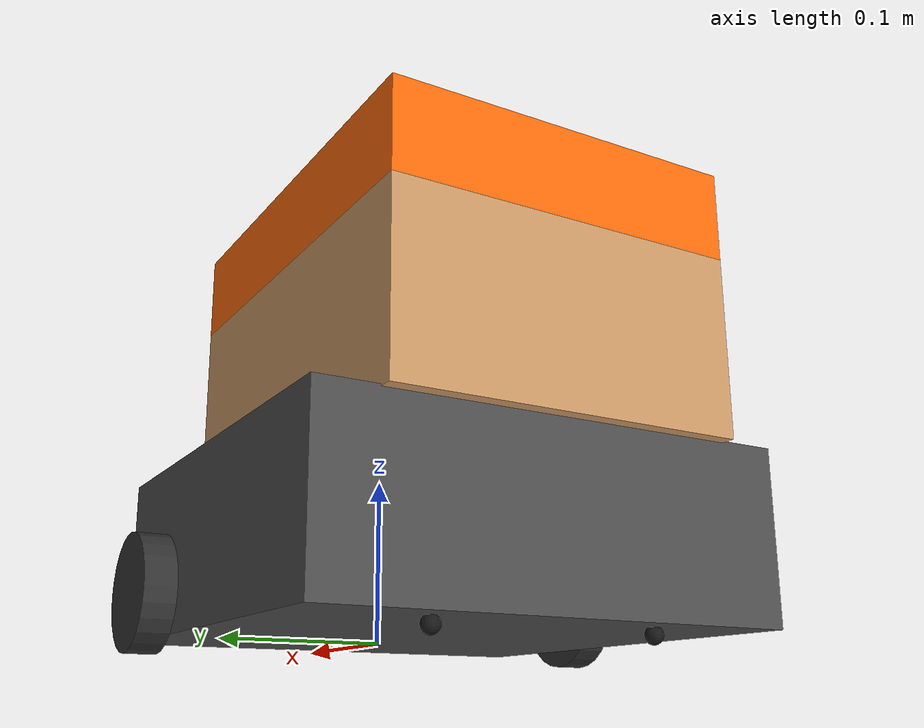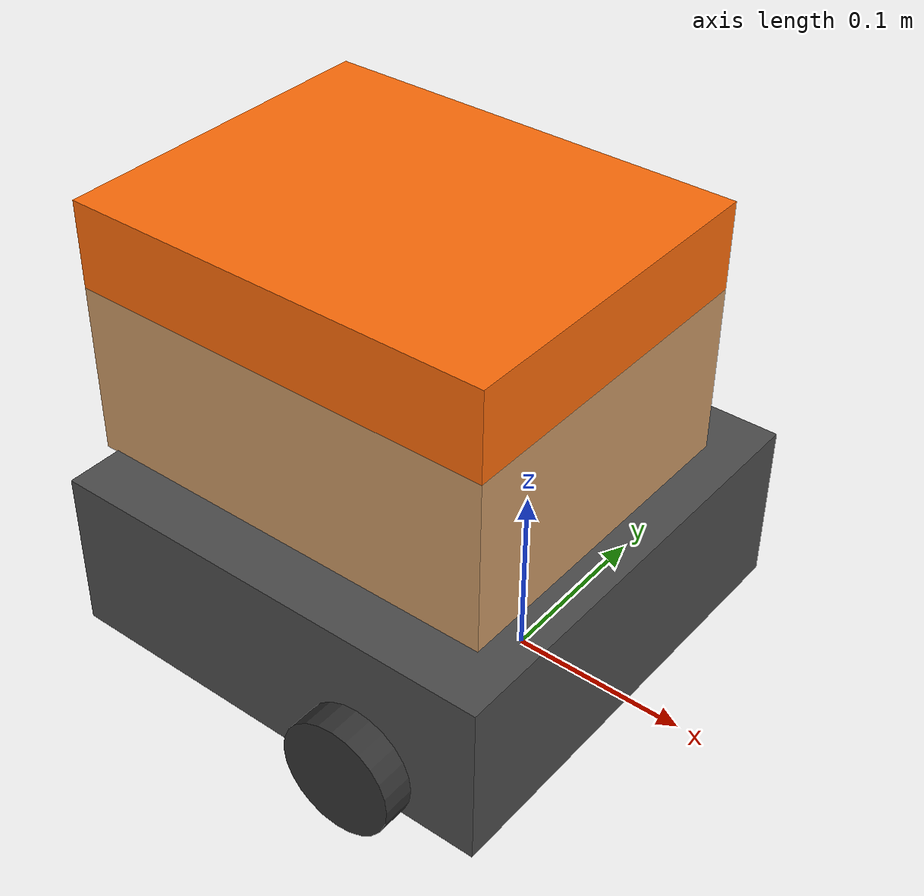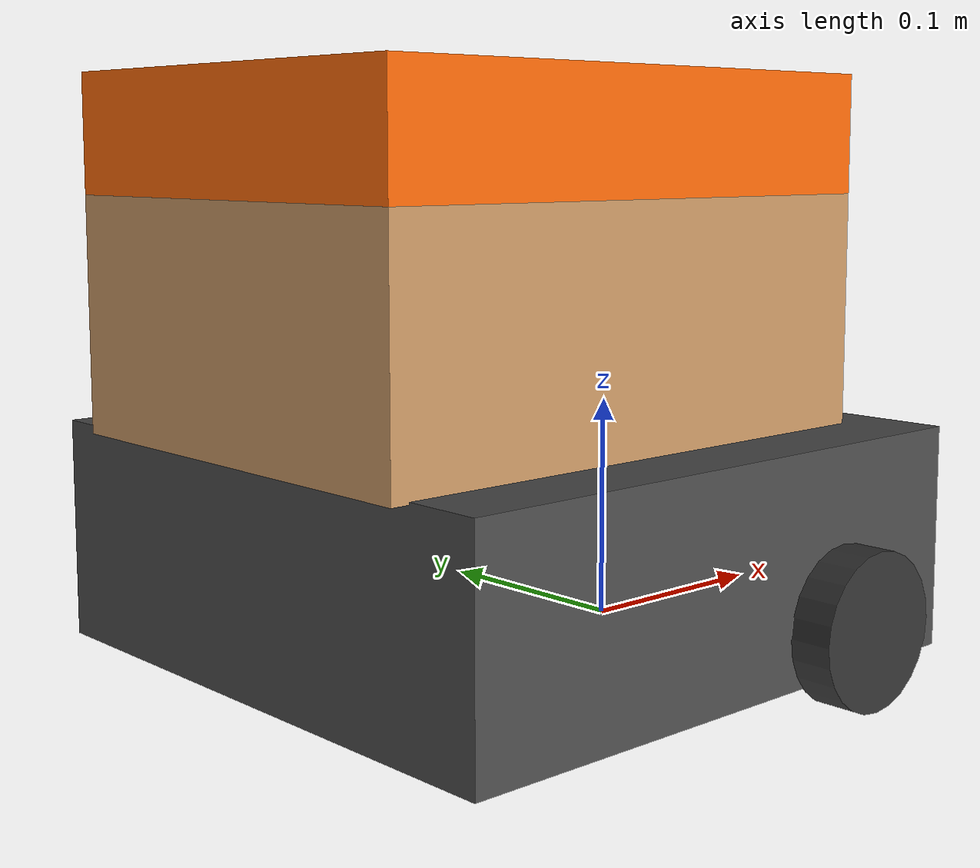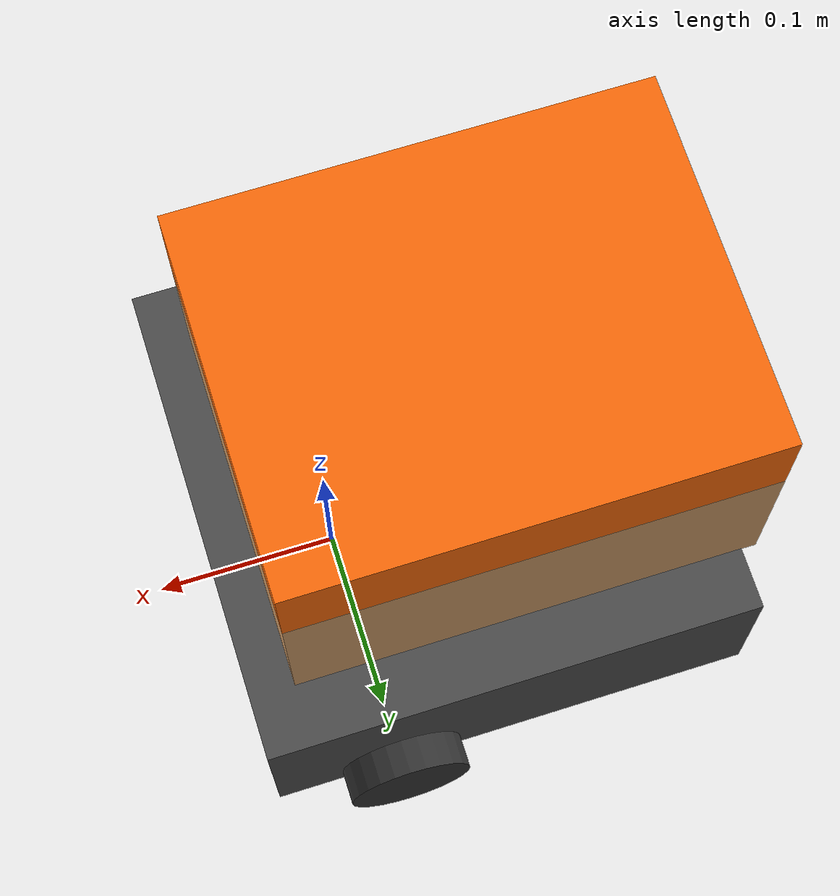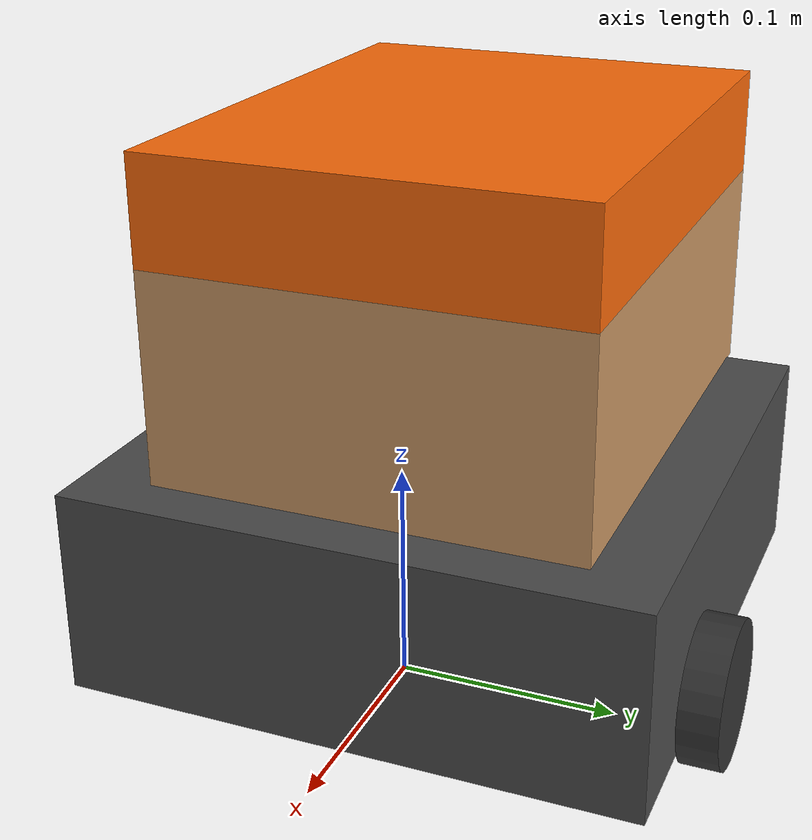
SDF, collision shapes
<?xml version="1.0" ?>
<sdf version="1.8">
  <model name="turtlebot3_waffle_pi">
    <pose>0.0 0.0 0.0 0.0 0.0 0.0</pose>

    <link name="base_footprint"/>

    <link name="base_link">
      <inertial>
        <pose>-0.064 0 0.048 0 0 0</pose>
        <inertia>
          <ixx>3.2458e-02</ixx>
          <ixy>0</ixy>
          <ixz>0</ixz>
          <iyy>3.2458e-02</iyy>
          <iyz>0</iyz>
          <izz>5.8722e-02</izz>
        </inertia>
        <mass>1.3729</mass>
      </inertial>

      <collision name="base_collision">
        <pose>-0.064 0 0.048 0 0 0</pose>
        <geometry>
          <box>
            <size>0.266 0.266 0.096</size>
          </box>
        </geometry>
      </collision>

      <visual name="base_visual">
        <pose>-0.032 0 0 0 0 0</pose>
        <geometry>
          <mesh>
            <uri>model://turtlebot3_common/meshes/bases/waffle_pi_base.stl</uri>
            <scale>0.001 0.001 0.001</scale>
          </mesh>
        </geometry>
        <material>
          <ambient>0.3 0.3 0.3 1.0</ambient>
          <diffuse>0.3 0.3 0.3 1.0</diffuse>
        </material>
      </visual>
    </link>

    <link name="imu_link">
      <sensor name="tb3_imu" type="imu">
        <always_on>true</always_on>
        <update_rate>200</update_rate>
        <topic>imu</topic>
        <imu>
          <angular_velocity>
            <x>
              <noise type="gaussian">
                <mean>0.0</mean>
                <stddev>2e-4</stddev>
              </noise>
            </x>
            <y>
              <noise type="gaussian">
                <mean>0.0</mean>
                <stddev>2e-4</stddev>
              </noise>
            </y>
            <z>
              <noise type="gaussian">
                <mean>0.0</mean>
                <stddev>2e-4</stddev>
              </noise>
            </z>
          </angular_velocity>
          <linear_acceleration>
            <x>
              <noise type="gaussian">
                <mean>0.0</mean>
                <stddev>1.7e-2</stddev>
              </noise>
            </x>
            <y>
              <noise type="gaussian">
                <mean>0.0</mean>
                <stddev>1.7e-2</stddev>
              </noise>
            </y>
            <z>
              <noise type="gaussian">
                <mean>0.0</mean>
                <stddev>1.7e-2</stddev>
              </noise>
            </z>
          </linear_acceleration>
        </imu>
      </sensor>
    </link>

    <link name="base_scan">
      <inertial>
        <pose>-0.052 0 0.111 0 0 0</pose>
        <inertia>
          <ixx>0.001</ixx>
          <ixy>0.000</ixy>
          <ixz>0.000</ixz>
          <iyy>0.001</iyy>
          <iyz>0.000</iyz>
          <izz>0.001</izz>
        </inertia>
        <mass>0.114</mass>
      </inertial>

      <collision name="lidar_sensor_collision">
        <pose>-0.052 0 0.111 0 0 0</pose>
        <geometry>
          <cylinder>
            <radius>0.0508</radius>
            <length>0.055</length>
          </cylinder>
        </geometry>
      </collision>

      <visual name="lidar_sensor_visual">
        <pose>-0.064 0 0.121 0 0 0</pose>
        <geometry>
          <mesh>
            <uri>model://turtlebot3_common/meshes/sensors/lds.stl</uri>
            <scale>0.001 0.001 0.001</scale>
          </mesh>
        </geometry>
        <material>
          <ambient>0.2 0.2 0.2 1.0</ambient>
          <diffuse>0.2 0.2 0.2 1.0</diffuse>
        </material>
      </visual>

      <sensor name="hls_lfcd_lds" type="gpu_lidar">
        <always_on>true</always_on>
        <visualize>true</visualize>
        <pose>-0.064 0 0.121 0 0 0</pose>
        <update_rate>10</update_rate>
        <topic>scan</topic>
        <gz_frame_id>base_scan</gz_frame_id>
        <lidar>
          <scan>
            <horizontal>
              <samples>360</samples>
              <resolution>1.000000</resolution>
              <min_angle>0.000000</min_angle>
              <max_angle>6.280000</max_angle>
            </horizontal>
          </scan>
          <range>
            <min>0.120000</min>
            <max>3.5</max>
            <resolution>0.015000</resolution>
          </range>
          <noise>
            <type>gaussian</type>
            <mean>0.0</mean>
            <stddev>0.01</stddev>
          </noise>
        </lidar>
      </sensor>
    </link>

    <link name="wheel_left_link">
      <inertial>
        <pose>0.0 0.144 0.023 -1.57 0 0</pose>
        <inertia>
          <ixx>1.8158194e-03</ixx>
          <ixy>-9.3392e-12</ixy>
          <ixz>1.04909e-11</ixz>
          <iyy>3.2922126e-03</iyy>
          <iyz>5.75694e-11</iyz>
          <izz>1.8158194e-03</izz>
        </inertia>
        <mass>2.8498940e-02</mass>
      </inertial>

      <collision name="wheel_left_collision">
        <pose>0.0 0.144 0.023 -1.57 0 0</pose>
        <geometry>
          <cylinder>
            <radius>0.033</radius>
            <length>0.018</length>
          </cylinder>
        </geometry>
        <surface>
          <friction>
            <ode>
              <mu>100000</mu>
              <mu2>100000</mu2>
              <fdir1>0 0 0</fdir1>
              <slip1>0.0</slip1>
              <slip2>0.0</slip2>
            </ode>
          </friction>
          <contact>
            <ode>
              <soft_cfm>0</soft_cfm>
              <soft_erp>0.2</soft_erp>
              <kp>1e+5</kp>
              <kd>1</kd>
              <max_vel>0.01</max_vel>
              <min_depth>0.001</min_depth>
            </ode>
          </contact>
        </surface>
      </collision>

      <visual name="wheel_left_visual">
        <pose>0.0 0.144 0.023 0 0 0</pose>
        <geometry>
          <mesh>
            <uri>model://turtlebot3_common/meshes/wheels/left_tire.stl</uri>
            <scale>0.001 0.001 0.001</scale>
          </mesh>
        </geometry>
        <material>
          <ambient>0.2 0.2 0.2 1.0</ambient>
          <diffuse>0.2 0.2 0.2 1.0</diffuse>
        </material>
      </visual>
    </link>

    <link name="wheel_right_link">
      <inertial>
        <pose>0.0 -0.144 0.023 -1.57 0 0</pose>
        <inertia>
          <ixx>1.8158194e-03</ixx>
          <ixy>-9.3392e-12</ixy>
          <ixz>1.04909e-11</ixz>
          <iyy>3.2922126e-03</iyy>
          <iyz>5.75694e-11</iyz>
          <izz>1.8158194e-03</izz>
        </inertia>
        <mass>2.8498940e-02</mass>
      </inertial>

      <collision name="wheel_right_collision">
        <pose>0.0 -0.144 0.023 -1.57 0 0</pose>
        <geometry>
          <cylinder>
            <radius>0.033</radius>
            <length>0.018</length>
          </cylinder>
        </geometry>
        <surface>
          <friction>
            <ode>
              <mu>100000</mu>
              <mu2>100000</mu2>
              <fdir1>0 0 0</fdir1>
              <slip1>0.0</slip1>
              <slip2>0.0</slip2>
            </ode>
          </friction>
          <contact>
            <ode>
              <soft_cfm>0</soft_cfm>
              <soft_erp>0.2</soft_erp>
              <kp>1e+5</kp>
              <kd>1</kd>
              <max_vel>0.01</max_vel>
              <min_depth>0.001</min_depth>
            </ode>
          </contact>
        </surface>
      </collision>

      <visual name="wheel_right_visual">
        <pose>0.0 -0.144 0.023 0 0 0</pose>
        <geometry>
          <mesh>
            <uri>model://turtlebot3_common/meshes/wheels/right_tire.stl</uri>
            <scale>0.001 0.001 0.001</scale>
          </mesh>
        </geometry>
        <material>
          <ambient>0.2 0.2 0.2 1.0</ambient>
          <diffuse>0.2 0.2 0.2 1.0</diffuse>
        </material>
      </visual>
    </link>

    <link name='caster_back_right_link'>
      <pose>-0.177 -0.064 -0.004 -1.57 0 0</pose>
      <inertial>
        <mass>0.001</mass>
        <inertia>
          <ixx>0.00001</ixx>
          <ixy>0.000</ixy>
          <ixz>0.000</ixz>
          <iyy>0.00001</iyy>
          <iyz>0.000</iyz>
          <izz>0.00001</izz>
        </inertia>
      </inertial>
      <collision name='collision'>
        <geometry>
          <sphere>
            <radius>0.005000</radius>
          </sphere>
        </geometry>
        <surface>
          <contact>
            <ode>
              <soft_cfm>0</soft_cfm>
              <soft_erp>0.2</soft_erp>
              <kp>1e+5</kp>
              <kd>1</kd>
              <max_vel>0.01</max_vel>
              <min_depth>0.001</min_depth>
            </ode>
          </contact>
        </surface>
      </collision>
      <visual name='visual'>
        <geometry>
          <sphere>
            <radius>0.005000</radius>
          </sphere>
        </geometry>
        <material>
          <ambient>0.1 0.1 0.1 1.0</ambient>
          <diffuse>0.1 0.1 0.1 1.0</diffuse>
        </material>
      </visual>
    </link>

    <link name='caster_back_left_link'>
      <pose>-0.177 0.064 -0.004 -1.57 0 0</pose>
      <inertial>
        <mass>0.001</mass>
        <inertia>
          <ixx>0.00001</ixx>
          <ixy>0.000</ixy>
          <ixz>0.000</ixz>
          <iyy>0.00001</iyy>
          <iyz>0.000</iyz>
          <izz>0.00001</izz>
        </inertia>
      </inertial>
      <collision name='collision'>
        <geometry>
          <sphere>
            <radius>0.005000</radius>
          </sphere>
        </geometry>
        <surface>
          <contact>
            <ode>
              <soft_cfm>0</soft_cfm>
              <soft_erp>0.2</soft_erp>
              <kp>1e+5</kp>
              <kd>1</kd>
              <max_vel>0.01</max_vel>
              <min_depth>0.001</min_depth>
            </ode>
          </contact>
        </surface>
      </collision>
      <visual name='visual'>
        <geometry>
          <sphere>
            <radius>0.005000</radius>
          </sphere>
        </geometry>
        <material>
          <ambient>0.1 0.1 0.1 1.0</ambient>
          <diffuse>0.1 0.1 0.1 1.0</diffuse>
        </material>
      </visual>
    </link>

    <link name="camera_link"/>

    <link name="camera_rgb_frame">
      <inertial>
        <pose>0.276 0.0 0.093 0 0 0</pose>
        <inertia>
          <ixx>0.001</ixx>
          <ixy>0.000</ixy>
          <ixz>0.000</ixz>
          <iyy>0.001</iyy>
          <iyz>0.000</iyz>
          <izz>0.001</izz>
        </inertia>
        <mass>0.035</mass>
      </inertial>

      <pose>0.095 0.0 0.093 0 0 0</pose>

      <sensor name="camera" type="camera">
        <always_on>true</always_on>
        <visualize>true</visualize>
        <update_rate>30</update_rate>
        <topic>camera/image_raw</topic>
        <camera name="picam">
          <camera_info_topic>camera/camera_info</camera_info_topic>
          <horizontal_fov>1.085595</horizontal_fov>
          <image>
              <width>640</width>
              <height>480</height>
              <format>R8G8B8</format>
          </image>
          <clip>
              <near>0.03</near>
              <far>100</far>
          </clip>
          <noise>
            <type>gaussian</type>
            <mean>0.0</mean>
            <stddev>0.007</stddev>
          </noise>
        </camera>
      </sensor>
    </link>

    <!-- Storage Box with Lid -->
    <link name="storage_box_link">
      <pose>-0.08 0 0.095 0 0 0</pose>

      <visual name="storage_box_visual">
        <pose>0 0 0.05 0 0 0</pose>
        <geometry>
          <box>
            <size>0.25 0.20 0.10</size>
          </box>
        </geometry>
        <material>
          <ambient>0.8 0.6 0.4 1.0</ambient>
          <diffuse>0.8 0.6 0.4 1.0</diffuse>
        </material>
      </visual>

      <collision name="storage_box_collision">
        <pose>0 0 0.05 0 0 0</pose>
        <geometry>
          <box>
            <size>0.25 0.20 0.10</size>
          </box>
        </geometry>
      </collision>

      <inertial>
        <pose>0 0 0.05 0 0 0</pose>
        <mass>0.5</mass>
        <inertia>
          <ixx>0.002</ixx>
          <ixy>0</ixy>
          <ixz>0</ixz>
          <iyy>0.003</iyy>
          <iyz>0</iyz>
          <izz>0.004</izz>
        </inertia>
      </inertial>
    </link>

    <!-- Hinged Lid -->
    <link name="lid_link">
      <pose>-0.205 0 0.195 0 0 0</pose>

      <visual name="lid_visual">
        <pose>0.125 0 0.025 0 0 0</pose>
        <geometry>
          <box>
            <size>0.25 0.20 0.05</size>
          </box>
        </geometry>
        <material>
          <ambient>1.0 0.4235 0.0392 1.0</ambient>
          <diffuse>1.0 0.4235 0.0392 1.0</diffuse>
        </material>
      </visual>

      <collision name="lid_collision">
        <pose>0.125 0 0.025 0 0 0</pose>
        <geometry>
          <box>
            <size>0.25 0.20 0.05</size>
          </box>
        </geometry>
      </collision>

      <inertial>
        <pose>0.125 0 0.025 0 0 0</pose>
        <mass>0.3</mass>
        <inertia>
          <ixx>0.001</ixx>
          <ixy>0</ixy>
          <ixz>0</ixz>
          <iyy>0.002</iyy>
          <iyz>0</iyz>
          <izz>0.002</izz>
        </inertia>
      </inertial>
    </link>

    <!-- Base joint -->
    <joint name="base_joint" type="fixed">
      <parent>base_footprint</parent>
      <child>base_link</child>
      <pose>0.0 0.0 0.010 0 0 0</pose>
    </joint>

    <!-- Storage box joint -->
    <joint name="storage_box_joint" type="fixed">
      <parent>base_link</parent>
      <child>storage_box_link</child>
    </joint>

    <!-- Lid joint -->
    <joint name="lid_joint" type="revolute">
      <parent>storage_box_link</parent>
      <child>lid_link</child>
      <pose> 0 0 0.0 0 0 0</pose>
      <axis>
        <xyz>0 -1 0</xyz>
        <limit>
          <lower>0</lower>
          <upper>1.5708</upper>
          <effort>50</effort>
          <velocity>2.0</velocity>
        </limit>
        <dynamics>
          <damping>0.2</damping>
          <friction>0.05</friction>
        </dynamics>
      </axis>
    </joint>

    <!-- Wheel joints -->
    <joint name="wheel_left_joint" type="revolute">
      <parent>base_link</parent>
      <child>wheel_left_link</child>
      <pose>0.0 0.144 0.023 -1.57 0 0</pose>
      <axis>
        <xyz>0 0 1</xyz>
        <limit>
          <effort>20</effort>
        </limit>
      </axis>
    </joint>

    <joint name="wheel_right_joint" type="revolute">
      <parent>base_link</parent>
      <child>wheel_right_link</child>
      <pose>0.0 -0.144 0.023 -1.57 0 0</pose>
      <axis>
        <xyz>0 0 1</xyz>
        <limit>
          <effort>20</effort>
        </limit>
      </axis>
    </joint>

    <joint name='caster_back_right_joint' type='ball'>
      <parent>base_link</parent>
      <child>caster_back_right_link</child>
    </joint>

    <joint name='caster_back_left_joint' type='ball'>
      <parent>base_link</parent>
      <child>caster_back_left_link</child>
    </joint>

    <joint name="imu_joint" type="fixed">
      <parent>base_link</parent>
      <child>imu_link</child>
      <pose>-0.032 0 0.068 0 0 0</pose>
      <axis>
        <xyz>0 0 1</xyz>
      </axis>
    </joint>

    <joint name="lidar_joint" type="fixed">
      <parent>base_link</parent>
      <child>base_scan</child>
      <pose>-0.064 0 0.121 0 0 0</pose>
      <axis>
        <xyz>0 0 1</xyz>
      </axis>
    </joint>

    <joint name="camera_joint" type="fixed">
      <parent>base_link</parent>
      <child>camera_link</child>
      <pose>0.073 -0.011 0.084 0 0 0</pose>
      <axis>
        <xyz>0 0 1</xyz>
      </axis>
    </joint>

    <joint name="camera_rgb_joint" type="fixed">
      <parent>camera_link</parent>
      <child>camera_rgb_frame</child>
      <pose>0.003 0.011 0.009 0 0 0</pose>
      <axis>
        <xyz>0 0 1</xyz>
      </axis>
    </joint>

    <!-- Gazebo plugins -->
    <plugin filename="gz-sim-diff-drive-system" name="gz::sim::systems::DiffDrive">
      <left_joint>wheel_left_joint</left_joint>
      <right_joint>wheel_right_joint</right_joint>
      <wheel_separation>0.287</wheel_separation>
      <wheel_radius>0.033</wheel_radius>
      <max_linear_acceleration>1.0</max_linear_acceleration>
      <topic>cmd_vel</topic>
      <odom_topic>odom</odom_topic>
      <frame_id>odom</frame_id>
      <child_frame_id>base_footprint</child_frame_id>
      <odom_publisher_frequency>30</odom_publisher_frequency>
      <tf_topic>/tf</tf_topic>
    </plugin>

    <plugin filename="gz-sim-joint-state-publisher-system" name="gz::sim::systems::JointStatePublisher">
      <topic>joint_states</topic>
      <joint_name>wheel_left_joint</joint_name>
      <joint_name>wheel_right_joint</joint_name>
      <joint_name>lid_joint</joint_name>
    </plugin>

    <!-- Simple joint position controller for lid -->
    <plugin filename="gz-sim-joint-position-controller-system" name="gz::sim::systems::JointPositionController">
      <joint_name>lid_joint</joint_name>
      <topic>lid_joint_position_controller</topic>
      <initial_position>0</initial_position>
      <p_gain>3000</p_gain>
      <i_gain>2.0</i_gain>
      <d_gain>300</d_gain>
      <i_max>150</i_max>
      <i_min>-150</i_min>
      <cmd_max>15</cmd_max>
      <cmd_min>-15</cmd_min>
    </plugin>

  </model>
</sdf>
